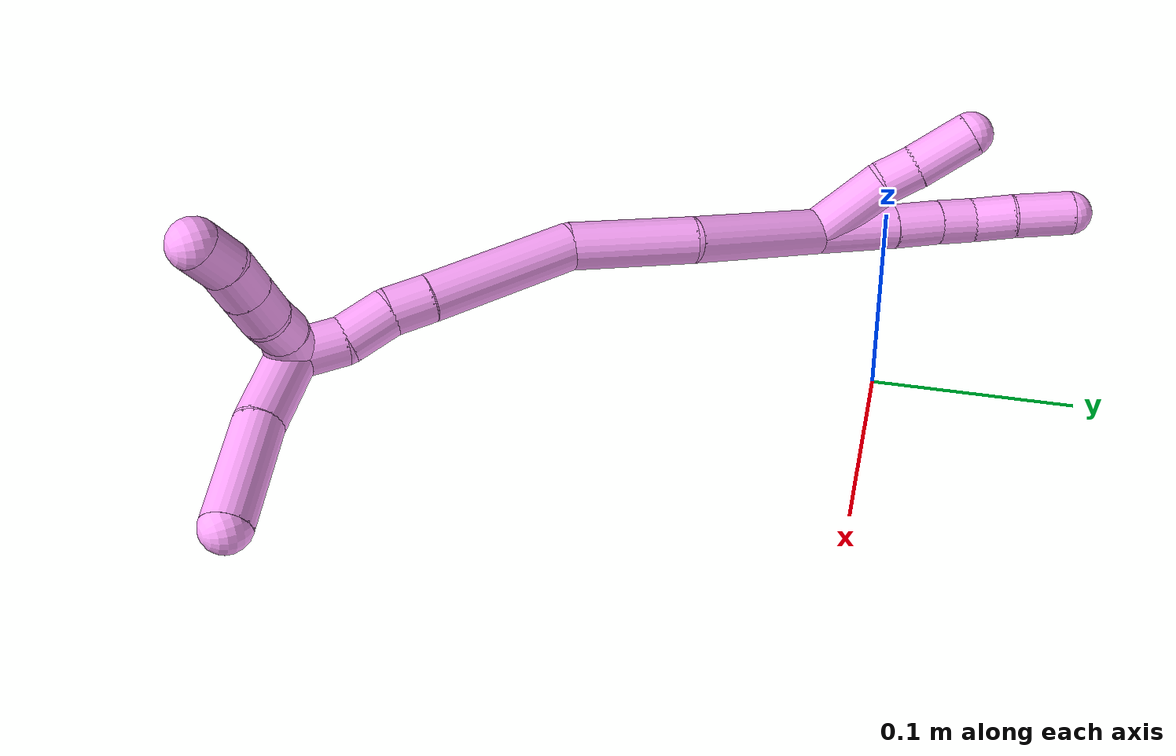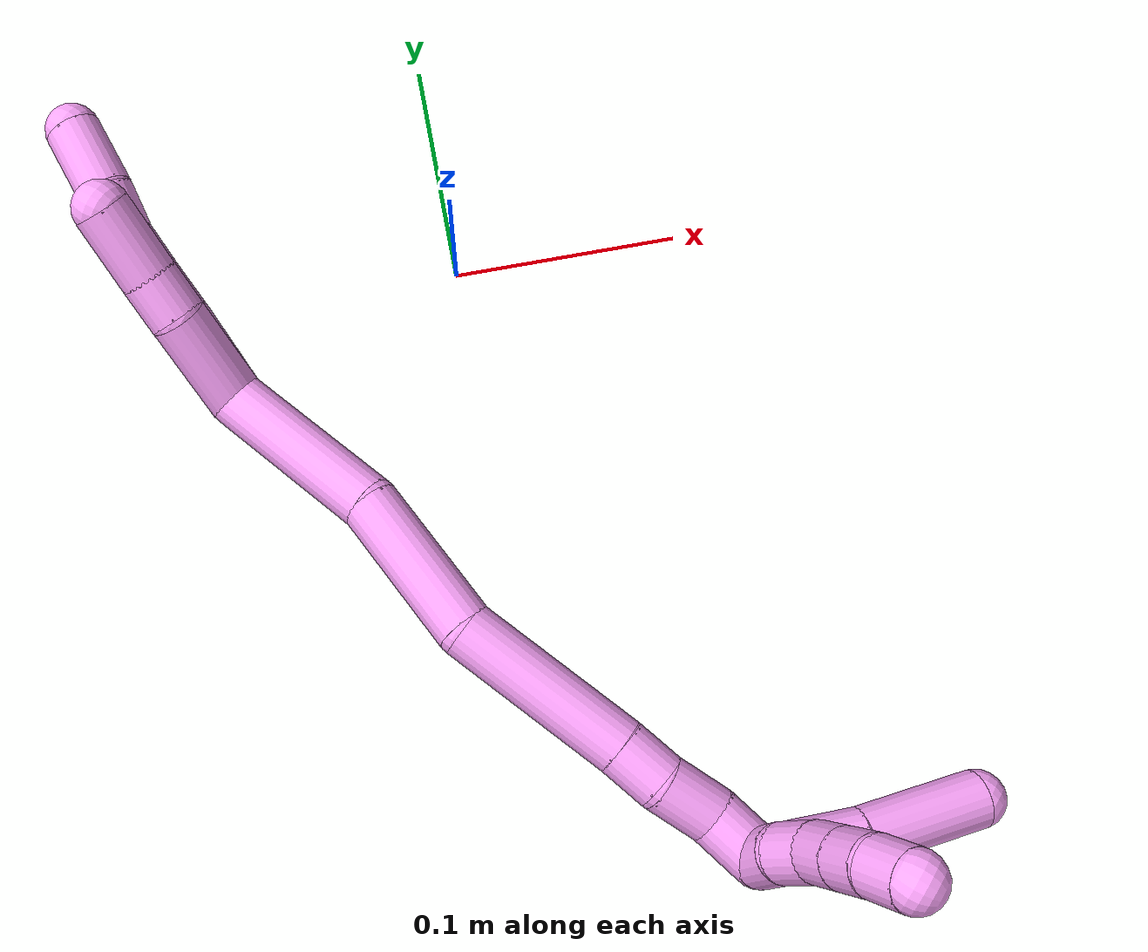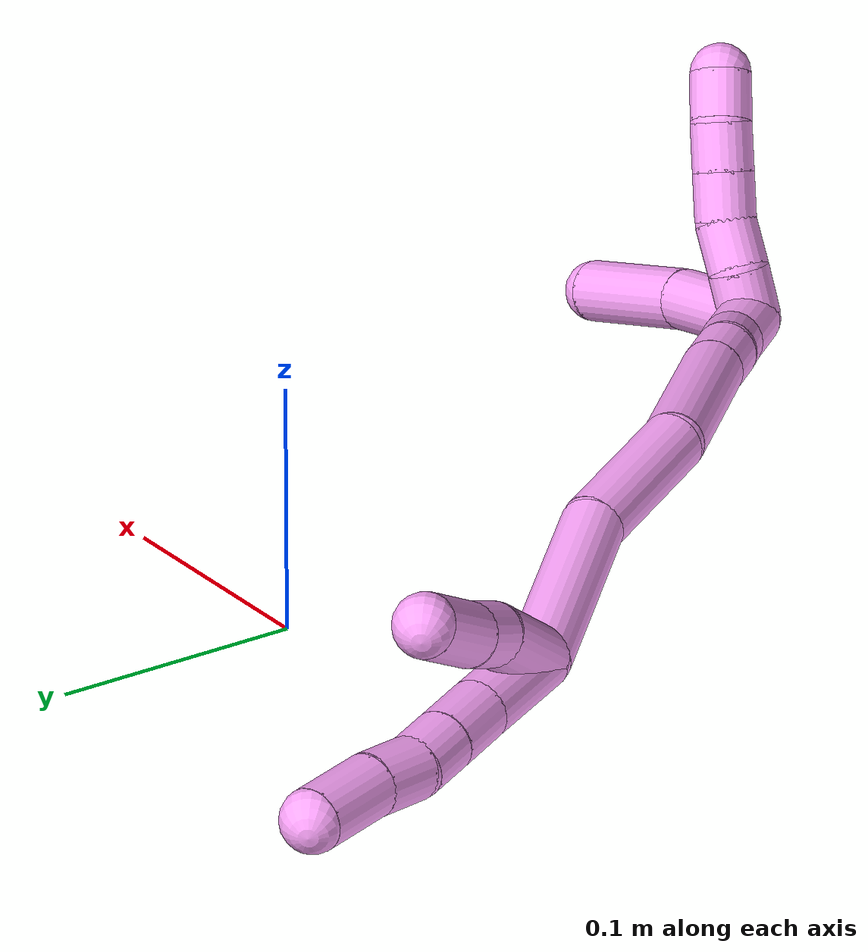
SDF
<sdf version="1.7">
 <world name="default">
  <model name="4">
   <static>0</static>
   <link name="4">
    <collision name="collision-cylinder-e_1_2_8">
     <pose>-0.003771 0.008419 -0.020251 -2.74759 -0.170276 0.808143</pose>
     <geometry><cylinder><radius>0.0125</radius><length>0.044506</length></cylinder></geometry>
     <surface>
      <friction><ode><mu>1.16</mu><mu2>1.16</mu2><slip1>0</slip1><slip2>0</slip2></ode></friction>
      <contact><ode><kp>1e+06</kp><kd>1</kd><max_vel>0</max_vel><min_depth>0.001</min_depth></ode></contact>
     </surface>
    </collision>
    <visual name="visual-cylinder-e_1_2_8">
     <pose>-0.003771 0.008419 -0.020251 -2.74759 -0.170276 0.808143</pose>
     <geometry><cylinder><radius>0.0125</radius><length>0.044506</length></cylinder></geometry>
     <material><ambient>1 0.65098 0.996078 1</ambient></material>
    </visual>
    <collision name="collision-cylinder-e_2_8_9">
     <pose>-0.00986 0.021475 -0.052658 -2.77721 -0.176327 0.894679</pose>
     <geometry><cylinder><radius>0.0125</radius><length>0.026431</length></cylinder></geometry>
     <surface>
      <friction><ode><mu>1.16</mu><mu2>1.16</mu2><slip1>0</slip1><slip2>0</slip2></ode></friction>
      <contact><ode><kp>1e+06</kp><kd>1</kd><max_vel>0</max_vel><min_depth>0.001</min_depth></ode></contact>
     </surface>
    </collision>
    <visual name="visual-cylinder-e_2_8_9">
     <pose>-0.00986 0.021475 -0.052658 -2.77721 -0.176327 0.894679</pose>
     <geometry><cylinder><radius>0.0125</radius><length>0.026431</length></cylinder></geometry>
     <material><ambient>1 0.65098 0.996078 1</ambient></material>
    </visual>
    <collision name="collision-cylinder-e_3_9_10">
     <pose>-0.013874 0.030101 -0.074472 -2.74982 -0.160891 0.771823</pose>
     <geometry><cylinder><radius>0.0125</radius><length>0.02117</length></cylinder></geometry>
     <surface>
      <friction><ode><mu>1.16</mu><mu2>1.16</mu2><slip1>0</slip1><slip2>0</slip2></ode></friction>
      <contact><ode><kp>1e+06</kp><kd>1</kd><max_vel>0</max_vel><min_depth>0.001</min_depth></ode></contact>
     </surface>
    </collision>
    <visual name="visual-cylinder-e_3_9_10">
     <pose>-0.013874 0.030101 -0.074472 -2.74982 -0.160891 0.771823</pose>
     <geometry><cylinder><radius>0.0125</radius><length>0.02117</length></cylinder></geometry>
     <material><ambient>1 0.65098 0.996078 1</ambient></material>
    </visual>
    <collision name="collision-cylinder-e_4_10_11">
     <pose>-0.019687 0.039816 -0.093888 -2.61106 -0.348968 1.15116</pose>
     <geometry><cylinder><radius>0.0125</radius><length>0.02408</length></cylinder></geometry>
     <surface>
      <friction><ode><mu>1.16</mu><mu2>1.16</mu2><slip1>0</slip1><slip2>0</slip2></ode></friction>
      <contact><ode><kp>1e+06</kp><kd>1</kd><max_vel>0</max_vel><min_depth>0.001</min_depth></ode></contact>
     </surface>
    </collision>
    <visual name="visual-cylinder-e_4_10_11">
     <pose>-0.019687 0.039816 -0.093888 -2.61106 -0.348968 1.15116</pose>
     <geometry><cylinder><radius>0.0125</radius><length>0.02408</length></cylinder></geometry>
     <material><ambient>1 0.65098 0.996078 1</ambient></material>
    </visual>
    <collision name="collision-cylinder-e_5_11_6">
     <pose>-0.027913 0.053102 -0.118198 -2.66239 -0.245575 0.93553</pose>
     <geometry><cylinder><radius>0.0125</radius><length>0.033812</length></cylinder></geometry>
     <surface>
      <friction><ode><mu>1.16</mu><mu2>1.16</mu2><slip1>0</slip1><slip2>0</slip2></ode></friction>
      <contact><ode><kp>1e+06</kp><kd>1</kd><max_vel>0</max_vel><min_depth>0.001</min_depth></ode></contact>
     </surface>
    </collision>
    <visual name="visual-cylinder-e_5_11_6">
     <pose>-0.027913 0.053102 -0.118198 -2.66239 -0.245575 0.93553</pose>
     <geometry><cylinder><radius>0.0125</radius><length>0.033812</length></cylinder></geometry>
     <material><ambient>1 0.65098 0.996078 1</ambient></material>
    </visual>
    <collision name="collision-cylinder-e_1_2_12">
     <pose>-0.016084 0.002113 -0.015192 -3.00338 -0.809109 2.82104</pose>
     <geometry><cylinder><radius>0.0125</radius><length>0.04445</length></cylinder></geometry>
     <surface>
      <friction><ode><mu>1.16</mu><mu2>1.16</mu2><slip1>0</slip1><slip2>0</slip2></ode></friction>
      <contact><ode><kp>1e+06</kp><kd>1</kd><max_vel>0</max_vel><min_depth>0.001</min_depth></ode></contact>
     </surface>
    </collision>
    <visual name="visual-cylinder-e_1_2_12">
     <pose>-0.016084 0.002113 -0.015192 -3.00338 -0.809109 2.82104</pose>
     <geometry><cylinder><radius>0.0125</radius><length>0.04445</length></cylinder></geometry>
     <material><ambient>1 0.65098 0.996078 1</ambient></material>
    </visual>
    <collision name="collision-cylinder-e_2_12_13">
     <pose>-0.038007 0.006211 -0.038546 -2.90311 -0.607509 2.4114</pose>
     <geometry><cylinder><radius>0.0125</radius><length>0.020459</length></cylinder></geometry>
     <surface>
      <friction><ode><mu>1.16</mu><mu2>1.16</mu2><slip1>0</slip1><slip2>0</slip2></ode></friction>
      <contact><ode><kp>1e+06</kp><kd>1</kd><max_vel>0</max_vel><min_depth>0.001</min_depth></ode></contact>
     </surface>
    </collision>
    <visual name="visual-cylinder-e_2_12_13">
     <pose>-0.038007 0.006211 -0.038546 -2.90311 -0.607509 2.4114</pose>
     <geometry><cylinder><radius>0.0125</radius><length>0.020459</length></cylinder></geometry>
     <material><ambient>1 0.65098 0.996078 1</ambient></material>
    </visual>
    <collision name="collision-cylinder-e_3_13_5">
     <pose>-0.05529 0.011046 -0.059697 -2.92553 -0.710572 2.57283</pose>
     <geometry><cylinder><radius>0.0125</radius><length>0.035091</length></cylinder></geometry>
     <surface>
      <friction><ode><mu>1.16</mu><mu2>1.16</mu2><slip1>0</slip1><slip2>0</slip2></ode></friction>
      <contact><ode><kp>1e+06</kp><kd>1</kd><max_vel>0</max_vel><min_depth>0.001</min_depth></ode></contact>
     </surface>
    </collision>
    <visual name="visual-cylinder-e_3_13_5">
     <pose>-0.05529 0.011046 -0.059697 -2.92553 -0.710572 2.57283</pose>
     <geometry><cylinder><radius>0.0125</radius><length>0.035091</length></cylinder></geometry>
     <material><ambient>1 0.65098 0.996078 1</ambient></material>
    </visual>
    <collision name="collision-cylinder-e_1_2_14">
     <pose>-0.002514 -0.006977 0.039999 0.172683 -0.061827 -0.005353</pose>
     <geometry><cylinder><radius>0.0125</radius><length>0.081362</length></cylinder></geometry>
     <surface>
      <friction><ode><mu>1.16</mu><mu2>1.16</mu2><slip1>0</slip1><slip2>0</slip2></ode></friction>
      <contact><ode><kp>1e+06</kp><kd>1</kd><max_vel>0</max_vel><min_depth>0.001</min_depth></ode></contact>
     </surface>
    </collision>
    <visual name="visual-cylinder-e_1_2_14">
     <pose>-0.002514 -0.006977 0.039999 0.172683 -0.061827 -0.005353</pose>
     <geometry><cylinder><radius>0.0125</radius><length>0.081362</length></cylinder></geometry>
     <material><ambient>1 0.65098 0.996078 1</ambient></material>
    </visual>
    <collision name="collision-cylinder-e_2_14_15">
     <pose>-0.001249 -0.025674 0.111342 0.357838 0.112433 0.020355</pose>
     <geometry><cylinder><radius>0.0125</radius><length>0.06735</length></cylinder></geometry>
     <surface>
      <friction><ode><mu>1.16</mu><mu2>1.16</mu2><slip1>0</slip1><slip2>0</slip2></ode></friction>
      <contact><ode><kp>1e+06</kp><kd>1</kd><max_vel>0</max_vel><min_depth>0.001</min_depth></ode></contact>
     </surface>
    </collision>
    <visual name="visual-cylinder-e_2_14_15">
     <pose>-0.001249 -0.025674 0.111342 0.357838 0.112433 0.020355</pose>
     <geometry><cylinder><radius>0.0125</radius><length>0.06735</length></cylinder></geometry>
     <material><ambient>1 0.65098 0.996078 1</ambient></material>
    </visual>
    <collision name="collision-cylinder-e_3_15_16">
     <pose>0.010386 -0.039159 0.181323 0.045653 0.200393 0.00459</pose>
     <geometry><cylinder><radius>0.0125</radius><length>0.078936</length></cylinder></geometry>
     <surface>
      <friction><ode><mu>1.16</mu><mu2>1.16</mu2><slip1>0</slip1><slip2>0</slip2></ode></friction>
      <contact><ode><kp>1e+06</kp><kd>1</kd><max_vel>0</max_vel><min_depth>0.001</min_depth></ode></contact>
     </surface>
    </collision>
    <visual name="visual-cylinder-e_3_15_16">
     <pose>0.010386 -0.039159 0.181323 0.045653 0.200393 0.00459</pose>
     <geometry><cylinder><radius>0.0125</radius><length>0.078936</length></cylinder></geometry>
     <material><ambient>1 0.65098 0.996078 1</ambient></material>
    </visual>
    <collision name="collision-cylinder-e_4_16_17">
     <pose>0.020719 -0.041957 0.230381 0.098769 0.232284 0.011532</pose>
     <geometry><cylinder><radius>0.0125</radius><length>0.021521</length></cylinder></geometry>
     <surface>
      <friction><ode><mu>1.16</mu><mu2>1.16</mu2><slip1>0</slip1><slip2>0</slip2></ode></friction>
      <contact><ode><kp>1e+06</kp><kd>1</kd><max_vel>0</max_vel><min_depth>0.001</min_depth></ode></contact>
     </surface>
    </collision>
    <visual name="visual-cylinder-e_4_16_17">
     <pose>0.020719 -0.041957 0.230381 0.098769 0.232284 0.011532</pose>
     <geometry><cylinder><radius>0.0125</radius><length>0.021521</length></cylinder></geometry>
     <material><ambient>1 0.65098 0.996078 1</ambient></material>
    </visual>
    <collision name="collision-cylinder-e_5_17_18">
     <pose>0.027794 -0.041746 0.252702 -0.104092 0.366915 -0.01933</pose>
     <geometry><cylinder><radius>0.0125</radius><length>0.025636</length></cylinder></geometry>
     <surface>
      <friction><ode><mu>1.16</mu><mu2>1.16</mu2><slip1>0</slip1><slip2>0</slip2></ode></friction>
      <contact><ode><kp>1e+06</kp><kd>1</kd><max_vel>0</max_vel><min_depth>0.001</min_depth></ode></contact>
     </surface>
    </collision>
    <visual name="visual-cylinder-e_5_17_18">
     <pose>0.027794 -0.041746 0.252702 -0.104092 0.366915 -0.01933</pose>
     <geometry><cylinder><radius>0.0125</radius><length>0.025636</length></cylinder></geometry>
     <material><ambient>1 0.65098 0.996078 1</ambient></material>
    </visual>
    <collision name="collision-cylinder-e_6_18_1">
     <pose>0.034789 -0.042396 0.276823 0.1537 0.191429 0.014785</pose>
     <geometry><cylinder><radius>0.0125</radius><length>0.025194</length></cylinder></geometry>
     <surface>
      <friction><ode><mu>1.16</mu><mu2>1.16</mu2><slip1>0</slip1><slip2>0</slip2></ode></friction>
      <contact><ode><kp>1e+06</kp><kd>1</kd><max_vel>0</max_vel><min_depth>0.001</min_depth></ode></contact>
     </surface>
    </collision>
    <visual name="visual-cylinder-e_6_18_1">
     <pose>0.034789 -0.042396 0.276823 0.1537 0.191429 0.014785</pose>
     <geometry><cylinder><radius>0.0125</radius><length>0.025194</length></cylinder></geometry>
     <material><ambient>1 0.65098 0.996078 1</ambient></material>
    </visual>
    <collision name="collision-cylinder-e_1_1_19">
     <pose>0.027817 -0.044371 0.29254 0.023364 -1.2136 -0.016219</pose>
     <geometry><cylinder><radius>0.0125</radius><length>0.02</length></cylinder></geometry>
     <surface>
      <friction><ode><mu>1.16</mu><mu2>1.16</mu2><slip1>0</slip1><slip2>0</slip2></ode></friction>
      <contact><ode><kp>1e+06</kp><kd>1</kd><max_vel>0</max_vel><min_depth>0.001</min_depth></ode></contact>
     </surface>
    </collision>
    <visual name="visual-cylinder-e_1_1_19">
     <pose>0.027817 -0.044371 0.29254 0.023364 -1.2136 -0.016219</pose>
     <geometry><cylinder><radius>0.0125</radius><length>0.02</length></cylinder></geometry>
     <material><ambient>1 0.65098 0.996078 1</ambient></material>
    </visual>
    <collision name="collision-cylinder-e_2_19_20">
     <pose>0.010116 -0.043811 0.301527 -0.116484 -0.984995 0.062556</pose>
     <geometry><cylinder><radius>0.0125</radius><length>0.02</length></cylinder></geometry>
     <surface>
      <friction><ode><mu>1.16</mu><mu2>1.16</mu2><slip1>0</slip1><slip2>0</slip2></ode></friction>
      <contact><ode><kp>1e+06</kp><kd>1</kd><max_vel>0</max_vel><min_depth>0.001</min_depth></ode></contact>
     </surface>
    </collision>
    <visual name="visual-cylinder-e_2_19_20">
     <pose>0.010116 -0.043811 0.301527 -0.116484 -0.984995 0.062556</pose>
     <geometry><cylinder><radius>0.0125</radius><length>0.02</length></cylinder></geometry>
     <material><ambient>1 0.65098 0.996078 1</ambient></material>
    </visual>
    <collision name="collision-cylinder-e_3_20_21">
     <pose>-0.006767 -0.044825 0.311932 0.325179 -1.02556 -0.184189</pose>
     <geometry><cylinder><radius>0.0125</radius><length>0.02</length></cylinder></geometry>
     <surface>
      <friction><ode><mu>1.16</mu><mu2>1.16</mu2><slip1>0</slip1><slip2>0</slip2></ode></friction>
      <contact><ode><kp>1e+06</kp><kd>1</kd><max_vel>0</max_vel><min_depth>0.001</min_depth></ode></contact>
     </surface>
    </collision>
    <visual name="visual-cylinder-e_3_20_21">
     <pose>-0.006767 -0.044825 0.311932 0.325179 -1.02556 -0.184189</pose>
     <geometry><cylinder><radius>0.0125</radius><length>0.02</length></cylinder></geometry>
     <material><ambient>1 0.65098 0.996078 1</ambient></material>
    </visual>
    <collision name="collision-cylinder-e_4_21_22">
     <pose>-0.023867 -0.048134 0.321763 0.324225 -1.02551 -0.183631</pose>
     <geometry><cylinder><radius>0.0125</radius><length>0.02</length></cylinder></geometry>
     <surface>
      <friction><ode><mu>1.16</mu><mu2>1.16</mu2><slip1>0</slip1><slip2>0</slip2></ode></friction>
      <contact><ode><kp>1e+06</kp><kd>1</kd><max_vel>0</max_vel><min_depth>0.001</min_depth></ode></contact>
     </surface>
    </collision>
    <visual name="visual-cylinder-e_4_21_22">
     <pose>-0.023867 -0.048134 0.321763 0.324225 -1.02551 -0.183631</pose>
     <geometry><cylinder><radius>0.0125</radius><length>0.02</length></cylinder></geometry>
     <material><ambient>1 0.65098 0.996078 1</ambient></material>
    </visual>
    <collision name="collision-cylinder-e_5_22_4">
     <pose>-0.0397 -0.051344 0.333352 0.229348 -0.815831 -0.099468</pose>
     <geometry><cylinder><radius>0.0125</radius><length>0.02</length></cylinder></geometry>
     <surface>
      <friction><ode><mu>1.16</mu><mu2>1.16</mu2><slip1>0</slip1><slip2>0</slip2></ode></friction>
      <contact><ode><kp>1e+06</kp><kd>1</kd><max_vel>0</max_vel><min_depth>0.001</min_depth></ode></contact>
     </surface>
    </collision>
    <visual name="visual-cylinder-e_5_22_4">
     <pose>-0.0397 -0.051344 0.333352 0.229348 -0.815831 -0.099468</pose>
     <geometry><cylinder><radius>0.0125</radius><length>0.02</length></cylinder></geometry>
     <material><ambient>1 0.65098 0.996078 1</ambient></material>
    </visual>
    <collision name="collision-cylinder-e_1_1_23">
     <pose>0.038431 -0.028574 0.304666 -0.788421 0.056116 -0.023348</pose>
     <geometry><cylinder><radius>0.0125</radius><length>0.044388</length></cylinder></geometry>
     <surface>
      <friction><ode><mu>1.16</mu><mu2>1.16</mu2><slip1>0</slip1><slip2>0</slip2></ode></friction>
      <contact><ode><kp>1e+06</kp><kd>1</kd><max_vel>0</max_vel><min_depth>0.001</min_depth></ode></contact>
     </surface>
    </collision>
    <visual name="visual-cylinder-e_1_1_23">
     <pose>0.038431 -0.028574 0.304666 -0.788421 0.056116 -0.023348</pose>
     <geometry><cylinder><radius>0.0125</radius><length>0.044388</length></cylinder></geometry>
     <material><ambient>1 0.65098 0.996078 1</ambient></material>
    </visual>
    <collision name="collision-cylinder-e_2_23_3">
     <pose>0.042594 0.008952 0.337288 -0.908664 0.105152 -0.051393</pose>
     <geometry><cylinder><radius>0.0125</radius><length>0.055612</length></cylinder></geometry>
     <surface>
      <friction><ode><mu>1.16</mu><mu2>1.16</mu2><slip1>0</slip1><slip2>0</slip2></ode></friction>
      <contact><ode><kp>1e+06</kp><kd>1</kd><max_vel>0</max_vel><min_depth>0.001</min_depth></ode></contact>
     </surface>
    </collision>
    <visual name="visual-cylinder-e_2_23_3">
     <pose>0.042594 0.008952 0.337288 -0.908664 0.105152 -0.051393</pose>
     <geometry><cylinder><radius>0.0125</radius><length>0.055612</length></cylinder></geometry>
     <material><ambient>1 0.65098 0.996078 1</ambient></material>
    </visual>
    <collision name="collision-sphere-3">
     <pose>0.045513 0.03076 0.354289 0 -0 0</pose>
     <geometry><sphere><radius>0.0125</radius></sphere></geometry>
     <surface>
      <friction><ode><mu>1.16</mu><mu2>1.16</mu2><slip1>0</slip1><slip2>0</slip2></ode></friction>
      <contact><ode><kp>1e+06</kp><kd>1</kd><max_vel>0</max_vel><min_depth>0.001</min_depth></ode></contact>
     </surface>
    </collision>
    <visual name="visual-sphere-3">
     <pose>0.045513 0.03076 0.354289 0 -0 0</pose>
     <geometry><sphere><radius>0.0125</radius></sphere></geometry>
     <material><ambient>1 0.65098 0.996078 1</ambient></material>
    </visual>
    <collision name="collision-sphere-23">
     <pose>0.039676 -0.012857 0.320287 0 -0 0</pose>
     <geometry><sphere><radius>0.0125</radius></sphere></geometry>
     <surface>
      <friction><ode><mu>1.16</mu><mu2>1.16</mu2><slip1>0</slip1><slip2>0</slip2></ode></friction>
      <contact><ode><kp>1e+06</kp><kd>1</kd><max_vel>0</max_vel><min_depth>0.001</min_depth></ode></contact>
     </surface>
    </collision>
    <visual name="visual-sphere-23">
     <pose>0.039676 -0.012857 0.320287 0 -0 0</pose>
     <geometry><sphere><radius>0.0125</radius></sphere></geometry>
     <material><ambient>1 0.65098 0.996078 1</ambient></material>
    </visual>
    <collision name="collision-sphere-4">
     <pose>-0.046982 -0.052902 0.340026 0 -0 0</pose>
     <geometry><sphere><radius>0.0125</radius></sphere></geometry>
     <surface>
      <friction><ode><mu>1.16</mu><mu2>1.16</mu2><slip1>0</slip1><slip2>0</slip2></ode></friction>
      <contact><ode><kp>1e+06</kp><kd>1</kd><max_vel>0</max_vel><min_depth>0.001</min_depth></ode></contact>
     </surface>
    </collision>
    <visual name="visual-sphere-4">
     <pose>-0.046982 -0.052902 0.340026 0 -0 0</pose>
     <geometry><sphere><radius>0.0125</radius></sphere></geometry>
     <material><ambient>1 0.65098 0.996078 1</ambient></material>
    </visual>
    <collision name="collision-sphere-22">
     <pose>-0.032417 -0.049786 0.326679 0 -0 0</pose>
     <geometry><sphere><radius>0.0125</radius></sphere></geometry>
     <surface>
      <friction><ode><mu>1.16</mu><mu2>1.16</mu2><slip1>0</slip1><slip2>0</slip2></ode></friction>
      <contact><ode><kp>1e+06</kp><kd>1</kd><max_vel>0</max_vel><min_depth>0.001</min_depth></ode></contact>
     </surface>
    </collision>
    <visual name="visual-sphere-22">
     <pose>-0.032417 -0.049786 0.326679 0 -0 0</pose>
     <geometry><sphere><radius>0.0125</radius></sphere></geometry>
     <material><ambient>1 0.65098 0.996078 1</ambient></material>
    </visual>
    <collision name="collision-sphere-21">
     <pose>-0.015317 -0.046482 0.316847 0 -0 0</pose>
     <geometry><sphere><radius>0.0125</radius></sphere></geometry>
     <surface>
      <friction><ode><mu>1.16</mu><mu2>1.16</mu2><slip1>0</slip1><slip2>0</slip2></ode></friction>
      <contact><ode><kp>1e+06</kp><kd>1</kd><max_vel>0</max_vel><min_depth>0.001</min_depth></ode></contact>
     </surface>
    </collision>
    <visual name="visual-sphere-21">
     <pose>-0.015317 -0.046482 0.316847 0 -0 0</pose>
     <geometry><sphere><radius>0.0125</radius></sphere></geometry>
     <material><ambient>1 0.65098 0.996078 1</ambient></material>
    </visual>
    <collision name="collision-sphere-20">
     <pose>0.001783 -0.043168 0.307018 0 -0 0</pose>
     <geometry><sphere><radius>0.0125</radius></sphere></geometry>
     <surface>
      <friction><ode><mu>1.16</mu><mu2>1.16</mu2><slip1>0</slip1><slip2>0</slip2></ode></friction>
      <contact><ode><kp>1e+06</kp><kd>1</kd><max_vel>0</max_vel><min_depth>0.001</min_depth></ode></contact>
     </surface>
    </collision>
    <visual name="visual-sphere-20">
     <pose>0.001783 -0.043168 0.307018 0 -0 0</pose>
     <geometry><sphere><radius>0.0125</radius></sphere></geometry>
     <material><ambient>1 0.65098 0.996078 1</ambient></material>
    </visual>
    <collision name="collision-sphere-6">
     <pose>-0.032024 0.060663 -0.13275 0 -0 0</pose>
     <geometry><sphere><radius>0.0125</radius></sphere></geometry>
     <surface>
      <friction><ode><mu>1.16</mu><mu2>1.16</mu2><slip1>0</slip1><slip2>0</slip2></ode></friction>
      <contact><ode><kp>1e+06</kp><kd>1</kd><max_vel>0</max_vel><min_depth>0.001</min_depth></ode></contact>
     </surface>
    </collision>
    <visual name="visual-sphere-6">
     <pose>-0.032024 0.060663 -0.13275 0 -0 0</pose>
     <geometry><sphere><radius>0.0125</radius></sphere></geometry>
     <material><ambient>1 0.65098 0.996078 1</ambient></material>
    </visual>
    <collision name="collision-sphere-11">
     <pose>-0.023803 0.045541 -0.103647 0 -0 0</pose>
     <geometry><sphere><radius>0.0125</radius></sphere></geometry>
     <surface>
      <friction><ode><mu>1.16</mu><mu2>1.16</mu2><slip1>0</slip1><slip2>0</slip2></ode></friction>
      <contact><ode><kp>1e+06</kp><kd>1</kd><max_vel>0</max_vel><min_depth>0.001</min_depth></ode></contact>
     </surface>
    </collision>
    <visual name="visual-sphere-11">
     <pose>-0.023803 0.045541 -0.103647 0 -0 0</pose>
     <geometry><sphere><radius>0.0125</radius></sphere></geometry>
     <material><ambient>1 0.65098 0.996078 1</ambient></material>
    </visual>
    <collision name="collision-sphere-10">
     <pose>-0.01557 0.034091 -0.084129 0 -0 0</pose>
     <geometry><sphere><radius>0.0125</radius></sphere></geometry>
     <surface>
      <friction><ode><mu>1.16</mu><mu2>1.16</mu2><slip1>0</slip1><slip2>0</slip2></ode></friction>
      <contact><ode><kp>1e+06</kp><kd>1</kd><max_vel>0</max_vel><min_depth>0.001</min_depth></ode></contact>
     </surface>
    </collision>
    <visual name="visual-sphere-10">
     <pose>-0.01557 0.034091 -0.084129 0 -0 0</pose>
     <geometry><sphere><radius>0.0125</radius></sphere></geometry>
     <material><ambient>1 0.65098 0.996078 1</ambient></material>
    </visual>
    <collision name="collision-sphere-9">
     <pose>-0.012178 0.026112 -0.064815 0 -0 0</pose>
     <geometry><sphere><radius>0.0125</radius></sphere></geometry>
     <surface>
      <friction><ode><mu>1.16</mu><mu2>1.16</mu2><slip1>0</slip1><slip2>0</slip2></ode></friction>
      <contact><ode><kp>1e+06</kp><kd>1</kd><max_vel>0</max_vel><min_depth>0.001</min_depth></ode></contact>
     </surface>
    </collision>
    <visual name="visual-sphere-9">
     <pose>-0.012178 0.026112 -0.064815 0 -0 0</pose>
     <geometry><sphere><radius>0.0125</radius></sphere></geometry>
     <material><ambient>1 0.65098 0.996078 1</ambient></material>
    </visual>
    <collision name="collision-sphere-2">
     <geometry><sphere><radius>0.0125</radius></sphere></geometry>
     <surface>
      <friction><ode><mu>1.16</mu><mu2>1.16</mu2><slip1>0</slip1><slip2>0</slip2></ode></friction>
      <contact><ode><kp>1e+06</kp><kd>1</kd><max_vel>0</max_vel><min_depth>0.001</min_depth></ode></contact>
     </surface>
    </collision>
    <visual name="visual-sphere-2">
     <geometry><sphere><radius>0.0125</radius></sphere></geometry>
     <material><ambient>1 0.65098 0.996078 1</ambient></material>
    </visual>
    <collision name="collision-sphere-19">
     <pose>0.018449 -0.044453 0.296035 0 -0 0</pose>
     <geometry><sphere><radius>0.0125</radius></sphere></geometry>
     <surface>
      <friction><ode><mu>1.16</mu><mu2>1.16</mu2><slip1>0</slip1><slip2>0</slip2></ode></friction>
      <contact><ode><kp>1e+06</kp><kd>1</kd><max_vel>0</max_vel><min_depth>0.001</min_depth></ode></contact>
     </surface>
    </collision>
    <visual name="visual-sphere-19">
     <pose>0.018449 -0.044453 0.296035 0 -0 0</pose>
     <geometry><sphere><radius>0.0125</radius></sphere></geometry>
     <material><ambient>1 0.65098 0.996078 1</ambient></material>
    </visual>
    <collision name="collision-sphere-8">
     <pose>-0.007542 0.016838 -0.040502 0 -0 0</pose>
     <geometry><sphere><radius>0.0125</radius></sphere></geometry>
     <surface>
      <friction><ode><mu>1.16</mu><mu2>1.16</mu2><slip1>0</slip1><slip2>0</slip2></ode></friction>
      <contact><ode><kp>1e+06</kp><kd>1</kd><max_vel>0</max_vel><min_depth>0.001</min_depth></ode></contact>
     </surface>
    </collision>
    <visual name="visual-sphere-8">
     <pose>-0.007542 0.016838 -0.040502 0 -0 0</pose>
     <geometry><sphere><radius>0.0125</radius></sphere></geometry>
     <material><ambient>1 0.65098 0.996078 1</ambient></material>
    </visual>
    <collision name="collision-sphere-12">
     <pose>-0.032167 0.004227 -0.030385 0 -0 0</pose>
     <geometry><sphere><radius>0.0125</radius></sphere></geometry>
     <surface>
      <friction><ode><mu>1.16</mu><mu2>1.16</mu2><slip1>0</slip1><slip2>0</slip2></ode></friction>
      <contact><ode><kp>1e+06</kp><kd>1</kd><max_vel>0</max_vel><min_depth>0.001</min_depth></ode></contact>
     </surface>
    </collision>
    <visual name="visual-sphere-12">
     <pose>-0.032167 0.004227 -0.030385 0 -0 0</pose>
     <geometry><sphere><radius>0.0125</radius></sphere></geometry>
     <material><ambient>1 0.65098 0.996078 1</ambient></material>
    </visual>
    <collision name="collision-sphere-13">
     <pose>-0.043846 0.008195 -0.046707 0 -0 0</pose>
     <geometry><sphere><radius>0.0125</radius></sphere></geometry>
     <surface>
      <friction><ode><mu>1.16</mu><mu2>1.16</mu2><slip1>0</slip1><slip2>0</slip2></ode></friction>
      <contact><ode><kp>1e+06</kp><kd>1</kd><max_vel>0</max_vel><min_depth>0.001</min_depth></ode></contact>
     </surface>
    </collision>
    <visual name="visual-sphere-13">
     <pose>-0.043846 0.008195 -0.046707 0 -0 0</pose>
     <geometry><sphere><radius>0.0125</radius></sphere></geometry>
     <material><ambient>1 0.65098 0.996078 1</ambient></material>
    </visual>
    <collision name="collision-sphere-5">
     <pose>-0.066734 0.013897 -0.072687 0 -0 0</pose>
     <geometry><sphere><radius>0.0125</radius></sphere></geometry>
     <surface>
      <friction><ode><mu>1.16</mu><mu2>1.16</mu2><slip1>0</slip1><slip2>0</slip2></ode></friction>
      <contact><ode><kp>1e+06</kp><kd>1</kd><max_vel>0</max_vel><min_depth>0.001</min_depth></ode></contact>
     </surface>
    </collision>
    <visual name="visual-sphere-5">
     <pose>-0.066734 0.013897 -0.072687 0 -0 0</pose>
     <geometry><sphere><radius>0.0125</radius></sphere></geometry>
     <material><ambient>1 0.65098 0.996078 1</ambient></material>
    </visual>
    <collision name="collision-sphere-14">
     <pose>-0.005027 -0.013953 0.079999 0 -0 0</pose>
     <geometry><sphere><radius>0.0125</radius></sphere></geometry>
     <surface>
      <friction><ode><mu>1.16</mu><mu2>1.16</mu2><slip1>0</slip1><slip2>0</slip2></ode></friction>
      <contact><ode><kp>1e+06</kp><kd>1</kd><max_vel>0</max_vel><min_depth>0.001</min_depth></ode></contact>
     </surface>
    </collision>
    <visual name="visual-sphere-14">
     <pose>-0.005027 -0.013953 0.079999 0 -0 0</pose>
     <geometry><sphere><radius>0.0125</radius></sphere></geometry>
     <material><ambient>1 0.65098 0.996078 1</ambient></material>
    </visual>
    <collision name="collision-sphere-15">
     <pose>0.002529 -0.037394 0.142685 0 -0 0</pose>
     <geometry><sphere><radius>0.0125</radius></sphere></geometry>
     <surface>
      <friction><ode><mu>1.16</mu><mu2>1.16</mu2><slip1>0</slip1><slip2>0</slip2></ode></friction>
      <contact><ode><kp>1e+06</kp><kd>1</kd><max_vel>0</max_vel><min_depth>0.001</min_depth></ode></contact>
     </surface>
    </collision>
    <visual name="visual-sphere-15">
     <pose>0.002529 -0.037394 0.142685 0 -0 0</pose>
     <geometry><sphere><radius>0.0125</radius></sphere></geometry>
     <material><ambient>1 0.65098 0.996078 1</ambient></material>
    </visual>
    <collision name="collision-sphere-16">
     <pose>0.018242 -0.040924 0.219961 0 -0 0</pose>
     <geometry><sphere><radius>0.0125</radius></sphere></geometry>
     <surface>
      <friction><ode><mu>1.16</mu><mu2>1.16</mu2><slip1>0</slip1><slip2>0</slip2></ode></friction>
      <contact><ode><kp>1e+06</kp><kd>1</kd><max_vel>0</max_vel><min_depth>0.001</min_depth></ode></contact>
     </surface>
    </collision>
    <visual name="visual-sphere-16">
     <pose>0.018242 -0.040924 0.219961 0 -0 0</pose>
     <geometry><sphere><radius>0.0125</radius></sphere></geometry>
     <material><ambient>1 0.65098 0.996078 1</ambient></material>
    </visual>
    <collision name="collision-sphere-17">
     <pose>0.023196 -0.042989 0.240802 0 -0 0</pose>
     <geometry><sphere><radius>0.0125</radius></sphere></geometry>
     <surface>
      <friction><ode><mu>1.16</mu><mu2>1.16</mu2><slip1>0</slip1><slip2>0</slip2></ode></friction>
      <contact><ode><kp>1e+06</kp><kd>1</kd><max_vel>0</max_vel><min_depth>0.001</min_depth></ode></contact>
     </surface>
    </collision>
    <visual name="visual-sphere-17">
     <pose>0.023196 -0.042989 0.240802 0 -0 0</pose>
     <geometry><sphere><radius>0.0125</radius></sphere></geometry>
     <material><ambient>1 0.65098 0.996078 1</ambient></material>
    </visual>
    <collision name="collision-sphere-18">
     <pose>0.032393 -0.040503 0.264602 0 -0 0</pose>
     <geometry><sphere><radius>0.0125</radius></sphere></geometry>
     <surface>
      <friction><ode><mu>1.16</mu><mu2>1.16</mu2><slip1>0</slip1><slip2>0</slip2></ode></friction>
      <contact><ode><kp>1e+06</kp><kd>1</kd><max_vel>0</max_vel><min_depth>0.001</min_depth></ode></contact>
     </surface>
    </collision>
    <visual name="visual-sphere-18">
     <pose>0.032393 -0.040503 0.264602 0 -0 0</pose>
     <geometry><sphere><radius>0.0125</radius></sphere></geometry>
     <material><ambient>1 0.65098 0.996078 1</ambient></material>
    </visual>
    <collision name="collision-sphere-1">
     <pose>0.037186 -0.04429 0.289044 0 -0 0</pose>
     <geometry><sphere><radius>0.0125</radius></sphere></geometry>
     <surface>
      <friction><ode><mu>1.16</mu><mu2>1.16</mu2><slip1>0</slip1><slip2>0</slip2></ode></friction>
      <contact><ode><kp>1e+06</kp><kd>1</kd><max_vel>0</max_vel><min_depth>0.001</min_depth></ode></contact>
     </surface>
    </collision>
    <visual name="visual-sphere-1">
     <pose>0.037186 -0.04429 0.289044 0 -0 0</pose>
     <geometry><sphere><radius>0.0125</radius></sphere></geometry>
     <material><ambient>1 0.65098 0.996078 1</ambient></material>
    </visual>
    <inertial>
     <pose>0.00056 -0.011876 0.124392 0 -0 0</pose>
     <mass>0.75</mass>
     <inertia>
      <ixx>0.000165</ixx>
      <ixy>0</ixy>
      <ixz>0</ixz>
      <iyy>0.000179</iyy>
      <iyz>0</iyz>
      <izz>1.5e-05</izz>
     </inertia>
    </inertial>
   </link>
   <pose>-0.105052 -0.042919 0.017762 -1.14642 1.24368 -1.89151</pose>
  </model>
 </world>
</sdf>
